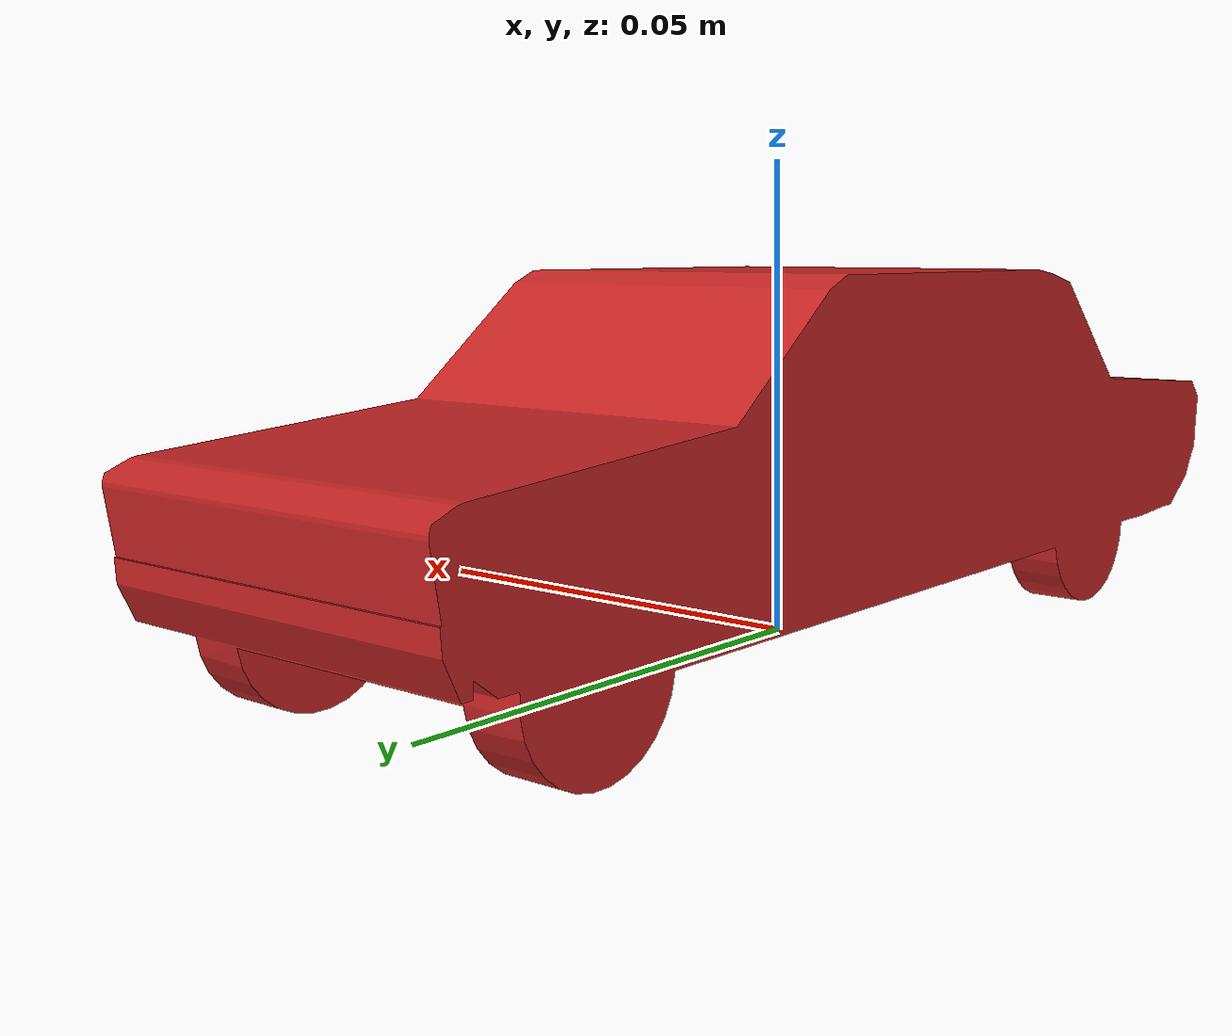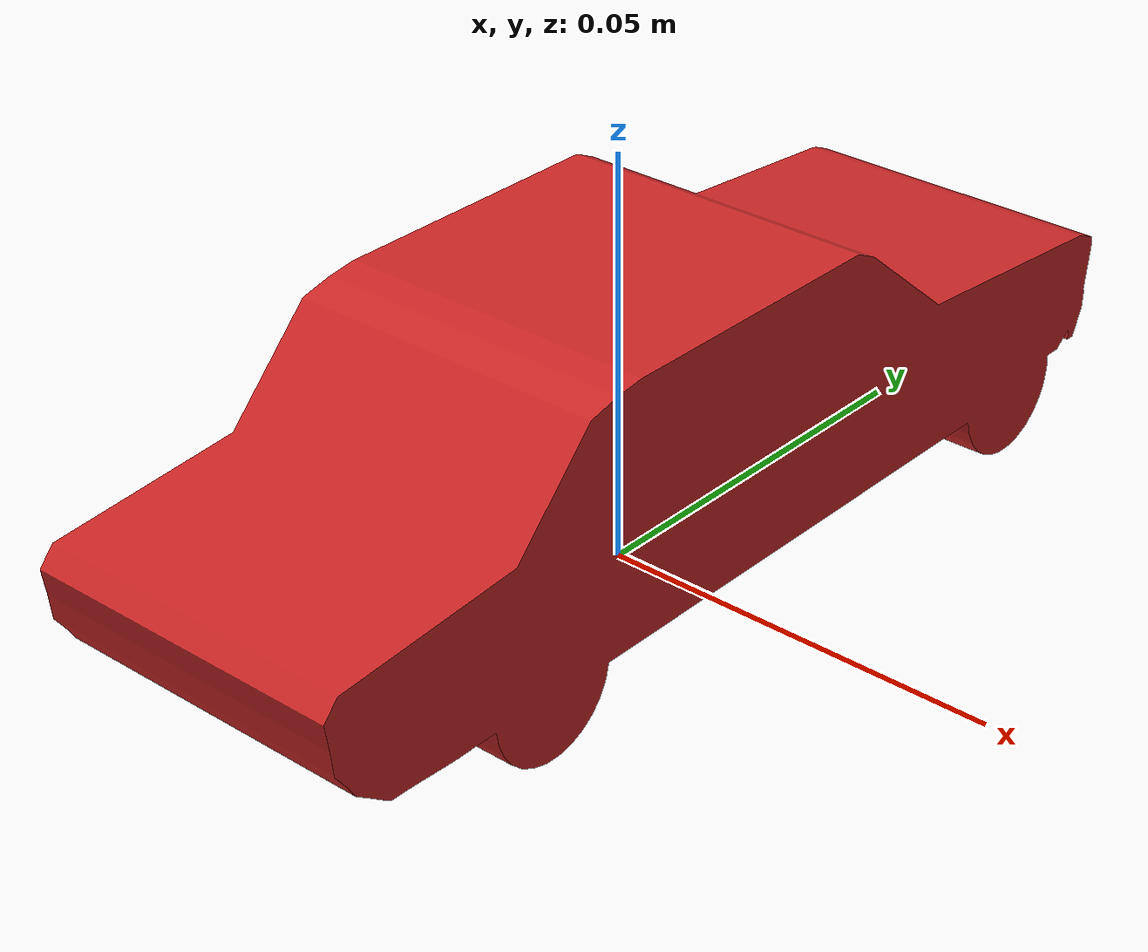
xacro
<?xml version="1.0" ?>
<robot name="car" xmlns:xacro="http://www.ros.org/wiki/xacro">

<xacro:include filename="$(find car_description)/urdf/materials.xacro" />
<xacro:include filename="$(find car_description)/urdf/car.trans" />
<link name="base_link">
  <inertial>
    <origin xyz="1.0161376409608881e-16 -0.00018301107250346684 0.019921769525778" rpy="0 0 0"/>
    <mass value="0.9441386315697112"/>
    <inertia ixx="0.001045" iyy="0.000193" izz="0.001109" ixy="0.0" iyz="1.4e-05" ixz="0.0"/>
  </inertial>
  <visual>
    <origin xyz="0 0 0" rpy="0 0 0"/>
    <geometry>
      <mesh filename="package://car_description/meshes/base_link.stl" scale="0.001 0.001 0.001"/>
    </geometry>
  </visual>
  <collision>
    <origin xyz="0 0 0" rpy="0 0 0"/>
    <geometry>
      <mesh filename="package://car_description/meshes/base_link.stl" scale="0.001 0.001 0.001"/>
    </geometry>
    <surface>
      <contact>
        <poissons_ratio>0.347</poissons_ratio>
        <elastic_modulus>8.8e+09</elastic_modulus>
        <ode>
          <kp>100000</kp>
          <kd>1</kd>
          <max_vel>1.0</max_vel>
          <min_depth>0.001</min_depth>
        </ode>
      </contact>
      <friction>
        <torsional>
          <coefficient>1.0</coefficient>
          <use_patch_radius>0</use_patch_radius>
          <surface_radius>0.05</surface_radius>
        </torsional>
      </friction>
    </surface>
  </collision>
</link>
<link name ="dummy">
</link>
<joint name="dummy_joint" type="fixed">
     <parent link="dummy"/>
     <child link="base_link"/>
</joint>

<gazebo reference="base_link">
  <material>Gazebo/Red</material>
  <mu1>0.2</mu1>
  <mu2>0.2</mu2>
  <selfCollide>true</selfCollide>
  <gravity>true</gravity>
</gazebo>

</robot>

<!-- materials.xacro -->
<robot name="car" xmlns:xacro="http://www.ros.org/wiki/xacro" >

<material name="red">
  <color rgba="0.0 0.0 1.0 1.0"/>
</material>

</robot>
